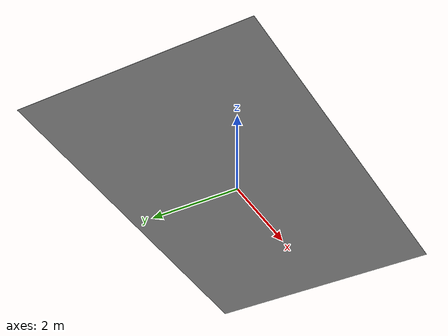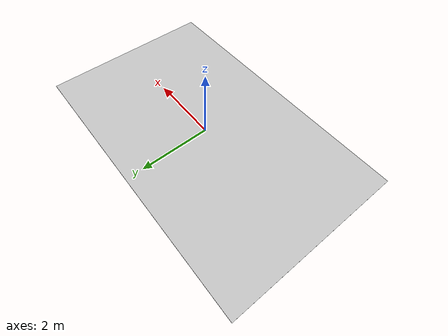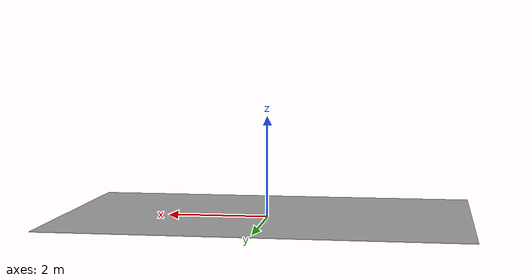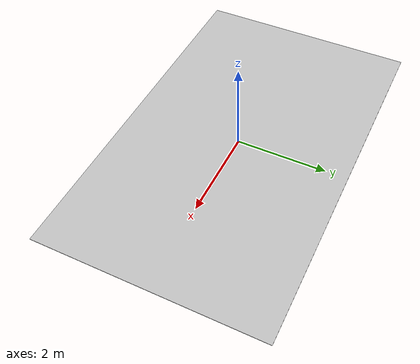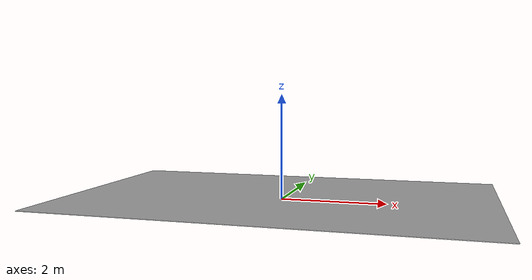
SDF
<?xml version='1.0'?>
<sdf version="1.4">
    <model name="aruco_map">
        <pose>0 0 0.05 0 0 0</pose>
        <static>true</static>
        <link name="link">
            <visual name="visual">
                <geometry>
                    <mesh>
                        <uri>model://map/meshes/map.dae</uri>
                    </mesh>
                </geometry>
            </visual>

        </link>
    </model>
</sdf>
